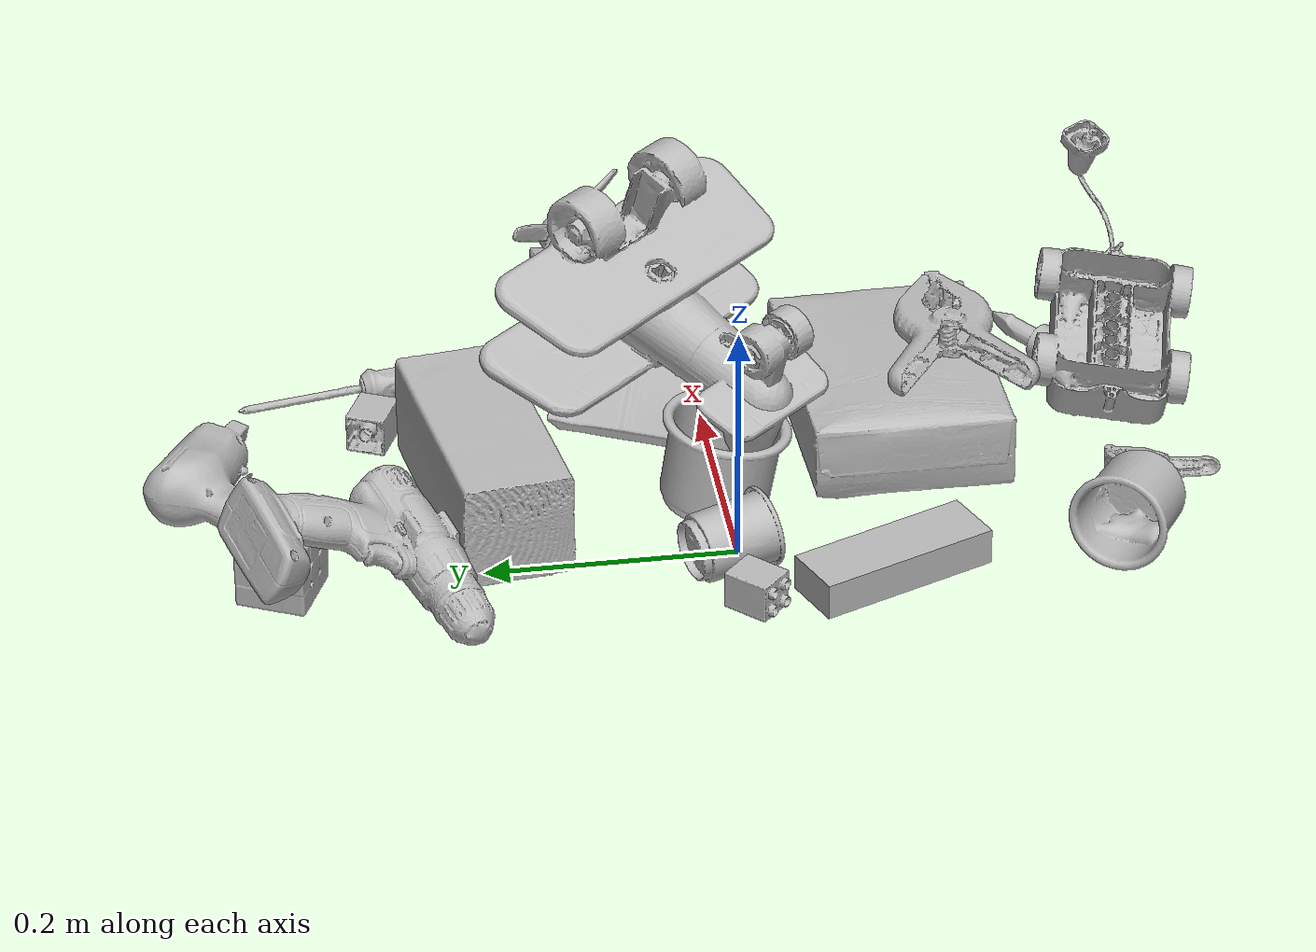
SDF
<sdf version="1.4">
  <world name="default">
    <light name="light1" type="point">
      <pose>0 0 1 0 0 0</pose>
      <diffuse>3 3 3 1</diffuse>
      <specular>3 3 3 1</specular>
    </light>
    <light name="light2" type="point">
      <pose>0 0.5 2 0 0 0</pose>
      <diffuse>1 1 1 1</diffuse>
      <specular>1 1 1 1</specular>
    </light>
    <light name="light3" type="point">
      <pose>0 0.5 2 0 0 0</pose>
      <diffuse>3 3 3 1</diffuse>
      <specular>3 3 3 1</specular>
    </light>
    <scene>
      <ambient>0.7 0.7 0.7</ambient>
    </scene>
    <model name="box21">
      <link name="link_box21">
        <collision name="default">
          <geometry>
            <mesh>
              <uri>model://cracker_box/collision_meshes/collision.obj</uri>
              <scale>1.0 1.0 1.0</scale>
            </mesh>
          </geometry>
          <surface>
            <friction>
              <ode>
                <mu>0.5</mu>
                <mu2>0.5</mu2>
              </ode>
            </friction>
          <contact>
        <ode>
            <max_vel>0</max_vel>
            <min_depth>0.0001</min_depth>
            <kp>1e8</kp>
        </ode>
    </contact></surface>
        </collision>
        <visual name="default">
          <geometry>
            <mesh>
              <uri>model://cracker_box/visual_meshes/visual.dae</uri>
              <scale>1.0 1.0 1.0</scale>
            </mesh>
          </geometry>
        </visual>
        <inertial>
          <mass>2.2869980335235596</mass>
          <pose>0.0009464151225984097 0.0002543425071053207 -0.0017029535956680775 -0.0003162075418873318 -0.011106487737663914 0.0025467956997025456</pose>
          <inertia>
            <ixx>0.005817102</ixx>
            <iyy>0.009605178</iyy>
            <izz>0.013707472</izz>
            <ixy>0</ixy>
            <ixz>0</ixz>
            <iyz>0</iyz>
          </inertia>
        </inertial>
      </link>
      <pose>0.1587095707654953 -0.1485683023929596 0.0355319119989872 3.137147874317939 -0.016549949031238558 -3.120440766538095</pose>
    </model>
    <model name="box22">
      <link name="link_box22">
        <collision name="default">
          <geometry>
            <mesh>
              <uri>model://pudding_box/collision_meshes/collision.obj</uri>
              <scale>1.0 1.0 1.0</scale>
            </mesh>
          </geometry>
          <surface>
            <friction>
              <ode>
                <mu>0.5</mu>
                <mu2>0.5</mu2>
              </ode>
            </friction>
          <contact>
        <ode>
            <max_vel>0</max_vel>
            <min_depth>0.0001</min_depth>
            <kp>1e8</kp>
        </ode>
    </contact></surface>
        </collision>
        <visual name="default">
          <geometry>
            <mesh>
              <uri>model://pudding_box/visual_meshes/visual.dae</uri>
              <scale>1.0 1.0 1.0</scale>
            </mesh>
          </geometry>
        </visual>
        <inertial>
          <mass>0.5370154976844788</mass>
          <pose>0.0004894821904599667 0.0008067885646596551 -0.0005188827635720372 0.005213101796859606 -0.006603800100757192 0.02007981956729938</pose>
          <inertia>
            <ixx>0.0006070684</ixx>
            <iyy>0.00040843996</iyy>
            <izz>0.00089649507</izz>
            <ixy>0</ixy>
            <ixz>0</ixz>
            <iyz>0</iyz>
          </inertia>
        </inertial>
      </link>
      <pose>0.2756819427013397 0.08143375813961029 0.05620679631829262 1.648209436595389 -0.001239612280903734 1.528965960751734</pose>
    </model>
    <model name="box23">
      <link name="link_box23">
        <collision name="default">
          <geometry>
            <mesh>
              <uri>model://jenga/collision_meshes/collision.obj</uri>
              <scale>1.0 1.0 1.0</scale>
            </mesh>
          </geometry>
          <surface>
            <friction>
              <ode>
                <mu>0.5</mu>
                <mu2>0.5</mu2>
              </ode>
            </friction>
          <contact>
        <ode>
            <max_vel>0</max_vel>
            <min_depth>0.0001</min_depth>
            <kp>1e8</kp>
        </ode>
    </contact></surface>
        </collision>
        <visual name="default">
          <geometry>
            <mesh>
              <uri>model://jenga/visual_meshes/visual.dae</uri>
              <scale>1.0 1.0 1.0</scale>
            </mesh>
          </geometry>
        </visual>
        <inertial>
          <mass>0.17325031757354736</mass>
          <pose>-2.502855807051674e-07 -0.0001025000965455547 -4.0923401684267446e-05 0.0 -7.34215461761844e-07 0.0</pose>
          <inertia>
            <ixx>4.7942573e-05</ixx>
            <iyy>0.00032485754</iyy>
            <izz>0.00034681303</izz>
            <ixy>0</ixy>
            <ixz>0</ixz>
            <iyz>0</iyz>
          </inertia>
        </inertial>
      </link>
      <pose>-0.048718955367803574 -0.11445380002260208 0.014999998733401299 9.474591424886297e-09 4.3640719860406936e-09 1.968933180010398</pose>
    </model>
    <model name="cup1">
      <link name="link_cup1">
        <collision name="default">
          <geometry>
            <mesh>
              <uri>model://c_cups/collision_meshes/collision.obj</uri>
              <scale>1.0 1.0 1.0</scale>
            </mesh>
          </geometry>
          <surface>
            <friction>
              <ode>
                <mu>0.5</mu>
                <mu2>0.5</mu2>
              </ode>
            </friction>
          <contact>
        <ode>
            <max_vel>0</max_vel>
            <min_depth>0.0001</min_depth>
            <kp>1e8</kp>
        </ode>
    </contact></surface>
        </collision>
        <visual name="default">
          <geometry>
            <mesh>
              <uri>model://c_cups/visual_meshes/visual.dae</uri>
              <scale>1.0 1.0 1.0</scale>
            </mesh>
          </geometry>
        </visual>
        <inertial>
          <mass>0.033937059342861176</mass>
          <pose>0.0007237257086671889 0.002015391131862998 -0.0012750985333696008 0.3021568203324006 0.0134615240317058 -0.08771816491093205</pose>
          <inertia>
            <ixx>2.5238536e-05</ixx>
            <iyy>2.4792533e-05</iyy>
            <izz>2.2320162e-05</izz>
            <ixy>0</ixy>
            <ixz>0</ixz>
            <iyz>0</iyz>
          </inertia>
        </inertial>
      </link>
      <pose>-0.023508921265602112 0.011274635791778564 0.030124502256512642 -1.4896651145101933 0.35043532838127184 -2.7960984022052076</pose>
    </model>
    <model name="cup2">
      <link name="link_cup2">
        <collision name="default">
          <geometry>
            <mesh>
              <uri>model://f_cups/collision_meshes/collision.obj</uri>
              <scale>1.0 1.0 1.0</scale>
            </mesh>
          </geometry>
          <surface>
            <friction>
              <ode>
                <mu>0.5</mu>
                <mu2>0.5</mu2>
              </ode>
            </friction>
          <contact>
        <ode>
            <max_vel>0</max_vel>
            <min_depth>0.0001</min_depth>
            <kp>1e8</kp>
        </ode>
    </contact></surface>
        </collision>
        <visual name="default">
          <geometry>
            <mesh>
              <uri>model://f_cups/visual_meshes/visual.dae</uri>
              <scale>1.0 1.0 1.0</scale>
            </mesh>
          </geometry>
        </visual>
        <inertial>
          <mass>0.10278050601482391</mass>
          <pose>-0.003171466989442706 -0.0006240068469196558 -0.003655537962913513 0.7862283183637603 -0.2607933822369466 -0.1823733550036739</pose>
          <inertia>
            <ixx>9.661645e-05</ixx>
            <iyy>0.00010135175</iyy>
            <izz>0.000105510015</izz>
            <ixy>0</ixy>
            <ixz>0</ixz>
            <iyz>0</iyz>
          </inertia>
        </inertial>
      </link>
      <pose>-0.0340537428855896 -0.30601072311401367 0.037186186760663986 -0.5493406377900595 -1.4613672723334037 0.0068791715225350065</pose>
    </model>
    <model name="box11">
      <link name="link_box11">
        <collision name="default">
          <geometry>
            <mesh>
              <uri>model://wood_block/collision_meshes/collision.obj</uri>
              <scale>1.0 1.0 1.0</scale>
            </mesh>
          </geometry>
          <surface>
            <friction>
              <ode>
                <mu>0.5</mu>
                <mu2>0.5</mu2>
              </ode>
            </friction>
          <contact>
        <ode>
            <max_vel>0</max_vel>
            <min_depth>0.0001</min_depth>
            <kp>1e8</kp>
        </ode>
    </contact></surface>
        </collision>
        <visual name="default">
          <geometry>
            <mesh>
              <uri>model://wood_block/visual_meshes/visual.dae</uri>
              <scale>1.0 1.0 1.0</scale>
            </mesh>
          </geometry>
        </visual>
        <inertial>
          <mass>2.321592330932617</mass>
          <pose>-5.813315056002466e-06 -0.000570809468626976 0.0002640858292579651 -0.052209755297172346 -0.005192694580027673 -0.006861376555374886</pose>
          <inertia>
            <ixx>0.0031066423</ixx>
            <iyy>0.009813884</iyy>
            <izz>0.009777175</izz>
            <ixy>0</ixy>
            <ixz>0</ixz>
            <iyz>0</iyz>
          </inertia>
        </inertial>
      </link>
      <pose>0.0855446606874466 0.1887548416852951 0.045702241361141205 1.5680076544596875 -0.006950542855228677 -2.9854637233156605</pose>
    </model>
    <model name="box12">
      <link name="link_box12">
        <collision name="default">
          <geometry>
            <mesh>
              <uri>model://gelatin_box/collision_meshes/collision.obj</uri>
              <scale>1.0 1.0 1.0</scale>
            </mesh>
          </geometry>
          <surface>
            <friction>
              <ode>
                <mu>0.5</mu>
                <mu2>0.5</mu2>
              </ode>
            </friction>
          <contact>
        <ode>
            <max_vel>0</max_vel>
            <min_depth>0.0001</min_depth>
            <kp>1e8</kp>
        </ode>
    </contact></surface>
        </collision>
        <visual name="default">
          <geometry>
            <mesh>
              <uri>model://gelatin_box/visual_meshes/visual.dae</uri>
              <scale>1.0 1.0 1.0</scale>
            </mesh>
          </geometry>
        </visual>
        <inertial>
          <mass>0.2263340801000595</mass>
          <pose>0.0004319618456065655 0.00011156871914863586 -0.00036403207923285663 -0.001050371981036731 -0.004755818689382226 0.016440561334450605</pose>
          <inertia>
            <ixx>0.00015977336</ixx>
            <iyy>0.00011412529</iyy>
            <izz>0.00024321067</izz>
            <ixy>0</ixy>
            <ixz>0</ixz>
            <iyz>0</iyz>
          </inertia>
        </inertial>
      </link>
      <pose>0.2884705662727356 -0.35496076941490173 0.01565667986869812 -3.078134904217747 -1.6927678197863177e-05 -1.5548164965625195</pose>
    </model>
    <model name="box13">
      <link name="link_box13">
        <collision name="default">
          <geometry>
            <mesh>
              <uri>model://sugar_box/collision_meshes/collision.obj</uri>
              <scale>1.0 1.0 1.0</scale>
            </mesh>
          </geometry>
          <surface>
            <friction>
              <ode>
                <mu>0.5</mu>
                <mu2>0.5</mu2>
              </ode>
            </friction>
          <contact>
        <ode>
            <max_vel>0</max_vel>
            <min_depth>0.0001</min_depth>
            <kp>1e8</kp>
        </ode>
    </contact></surface>
        </collision>
        <visual name="default">
          <geometry>
            <mesh>
              <uri>model://sugar_box/visual_meshes/visual.dae</uri>
              <scale>1.0 1.0 1.0</scale>
            </mesh>
          </geometry>
        </visual>
        <inertial>
          <mass>0.4976349174976349</mass>
          <pose>0.0010343727190047503 3.849109634757042e-05 -0.00036364805418998003 -0.0004046263004245651 0.001050663405794887 0.002615379021776999</pose>
          <inertia>
            <ixx>0.0004146281</ixx>
            <iyy>0.0013401629</iyy>
            <izz>0.0016043353</izz>
            <ixy>0</ixy>
            <ixz>0</ixz>
            <iyz>0</iyz>
          </inertia>
        </inertial>
      </link>
      <pose>0.17433686554431915 0.030934598296880722 0.045437559485435486 -2.316813377693801 -0.0034541931997226173 -2.0149602273521743</pose>
    </model>
    <model name="box14">
      <link name="link_box14">
        <collision name="default">
          <geometry>
            <mesh>
              <uri>model://rubiks_cube/collision_meshes/collision.obj</uri>
              <scale>1.0 1.0 1.0</scale>
            </mesh>
          </geometry>
          <surface>
            <friction>
              <ode>
                <mu>0.5</mu>
                <mu2>0.5</mu2>
              </ode>
            </friction>
          <contact>
        <ode>
            <max_vel>0</max_vel>
            <min_depth>0.0001</min_depth>
            <kp>1e8</kp>
        </ode>
    </contact></surface>
        </collision>
        <visual name="default">
          <geometry>
            <mesh>
              <uri>model://rubiks_cube/visual_meshes/visual.dae</uri>
              <scale>1.0 1.0 1.0</scale>
            </mesh>
          </geometry>
        </visual>
        <inertial>
          <mass>0.2531126141548157</mass>
          <pose>2.6721041649580002e-05 5.2569666877388954e-05 -7.264316536748083e-06 -0.05467274129792389 -0.0981396008906979 -0.0344563195746163</pose>
          <inertia>
            <ixx>0.00013986173</ixx>
            <iyy>0.00013920949</iyy>
            <izz>0.00014102072</izz>
            <ixy>0</ixy>
            <ixz>0</ixz>
            <iyz>0</iyz>
          </inertia>
        </inertial>
      </link>
      <pose>-0.0026388554833829403 0.3580007553100586 0.029261508956551552 1.2522774395207945 1.5374034090753588 0.8005472896095204</pose>
    </model>
    <model name="cup15">
      <link name="link_cup15">
        <collision name="default">
          <geometry>
            <mesh>
              <uri>model://j_cups/collision_meshes/collision.obj</uri>
              <scale>1.0 1.0 1.0</scale>
            </mesh>
          </geometry>
          <surface>
            <friction>
              <ode>
                <mu>0.5</mu>
                <mu2>0.5</mu2>
              </ode>
            </friction>
          <contact>
        <ode>
            <max_vel>0</max_vel>
            <min_depth>0.0001</min_depth>
            <kp>1e8</kp>
        </ode>
    </contact></surface>
        </collision>
        <visual name="default">
          <geometry>
            <mesh>
              <uri>model://j_cups/visual_meshes/visual.dae</uri>
              <scale>1.0 1.0 1.0</scale>
            </mesh>
          </geometry>
        </visual>
        <inertial>
          <mass>0.12765173614025116</mass>
          <pose>0.0006164864171296358 0.0005398980574682355 -0.0013479006011039019 0.030303852295551513 0.03757989298695449 0.4386938541947324</pose>
          <inertia>
            <ixx>0.00018743309</ixx>
            <iyy>0.00018938213</iyy>
            <izz>0.0002160715</izz>
            <ixy>0</ixy>
            <ixz>0</ixz>
            <iyz>0</iyz>
          </inertia>
        </inertial>
      </link>
      <pose>0.06444373726844788 0.0044190245680511 0.043899912387132645 -0.15580483747511606 -0.057360899000203726 2.8623776458809687</pose>
    </model>
    <model name="toy1">
      <link name="link_toy1">
        <collision name="default">
          <geometry>
            <mesh>
              <uri>model://f_lego_duplo/collision_meshes/collision.obj</uri>
              <scale>1.0 1.0 1.0</scale>
            </mesh>
          </geometry>
          <surface>
            <friction>
              <ode>
                <mu>0.5</mu>
                <mu2>0.5</mu2>
              </ode>
            </friction>
          <contact>
        <ode>
            <max_vel>0</max_vel>
            <min_depth>0.0001</min_depth>
            <kp>1e8</kp>
        </ode>
    </contact></surface>
        </collision>
        <visual name="default">
          <geometry>
            <mesh>
              <uri>model://f_lego_duplo/visual_meshes/visual.dae</uri>
              <scale>1.0 1.0 1.0</scale>
            </mesh>
          </geometry>
        </visual>
        <inertial>
          <mass>0.04013235494494438</mass>
          <pose>2.369376306887716e-05 0.00013393163681030273 0.0018837876850739121 0.029838734112773806 -0.014424842824784668 -0.6756708500035773</pose>
          <inertia>
            <ixx>8.480189e-06</ixx>
            <iyy>8.555736e-06</iyy>
            <izz>7.361164e-06</izz>
            <ixy>0</ixy>
            <ixz>0</ixz>
            <iyz>0</iyz>
          </inertia>
        </inertial>
      </link>
      <pose>0.20303994417190552 0.26459112763404846 0.016207218170166016 1.5789919918918969 0.00014488540680092767 1.1467246139430725</pose>
    </model>
    <model name="toy2">
      <link name="link_toy2">
        <collision name="default">
          <geometry>
            <mesh>
              <uri>model://e_toy_airplane/collision_meshes/collision.obj</uri>
              <scale>1.0 1.0 1.0</scale>
            </mesh>
          </geometry>
          <surface>
            <friction>
              <ode>
                <mu>0.5</mu>
                <mu2>0.5</mu2>
              </ode>
            </friction>
          <contact>
        <ode>
            <max_vel>0</max_vel>
            <min_depth>0.0001</min_depth>
            <kp>1e8</kp>
        </ode>
    </contact></surface>
        </collision>
        <visual name="default">
          <geometry>
            <mesh>
              <uri>model://e_toy_airplane/visual_meshes/visual.dae</uri>
              <scale>1.0 1.0 1.0</scale>
            </mesh>
          </geometry>
        </visual>
        <inertial>
          <mass>0.030105752870440483</mass>
          <pose>0.00011740480840671808 -2.248285454697907e-05 -0.011187204159796238 0.0055184715057391125 0.009228317867647443 0.150413097465581</pose>
          <inertia>
            <ixx>9.18862e-06</ixx>
            <iyy>9.094625e-06</iyy>
            <izz>2.761542e-06</izz>
            <ixy>0</ixy>
            <ixz>0</ixz>
            <iyz>0</iyz>
          </inertia>
        </inertial>
      </link>
      <pose>0.255879670381546 -0.27732324600219727 0.018169580027461052 1.458953689045237 0.3846252583575041 2.225663756150124</pose>
    </model>
    <model name="toy3">
      <link name="link_toy3">
        <collision name="default">
          <geometry>
            <mesh>
              <uri>model://g_lego_duplo/collision_meshes/collision.obj</uri>
              <scale>1.0 1.0 1.0</scale>
            </mesh>
          </geometry>
          <surface>
            <friction>
              <ode>
                <mu>0.5</mu>
                <mu2>0.5</mu2>
              </ode>
            </friction>
          <contact>
        <ode>
            <max_vel>0</max_vel>
            <min_depth>0.0001</min_depth>
            <kp>1e8</kp>
        </ode>
    </contact></surface>
        </collision>
        <visual name="default">
          <geometry>
            <mesh>
              <uri>model://g_lego_duplo/visual_meshes/visual.dae</uri>
              <scale>1.0 1.0 1.0</scale>
            </mesh>
          </geometry>
        </visual>
        <inertial>
          <mass>0.4529305100440979</mass>
          <pose>-0.050047703087329865 0.0017554633086547256 0.0038806775119155645 0.010963008114131517 0.03810824387856379 -0.09653032518797504</pose>
          <inertia>
            <ixx>0.00065630145</ixx>
            <iyy>0.0019842102</iyy>
            <izz>0.0024823209</izz>
            <ixy>0</ixy>
            <ixz>0</ixz>
            <iyz>0</iyz>
          </inertia>
        </inertial>
      </link>
      <pose>0.26285141706466675 -0.34711968898773193 0.0602426752448082 -3.0082933582707967 -0.24955507835881413 -0.22055635206390548</pose>
    </model>
    <model name="toy4">
      <link name="link_toy4">
        <collision name="default">
          <geometry>
            <mesh>
              <uri>model://b_lego_duplo/collision_meshes/collision.obj</uri>
              <scale>1.0 1.0 1.0</scale>
            </mesh>
          </geometry>
          <surface>
            <friction>
              <ode>
                <mu>0.5</mu>
                <mu2>0.5</mu2>
              </ode>
            </friction>
          <contact>
        <ode>
            <max_vel>0</max_vel>
            <min_depth>0.0001</min_depth>
            <kp>1e8</kp>
        </ode>
    </contact></surface>
        </collision>
        <visual name="default">
          <geometry>
            <mesh>
              <uri>model://b_lego_duplo/visual_meshes/visual.dae</uri>
              <scale>1.0 1.0 1.0</scale>
            </mesh>
          </geometry>
        </visual>
        <inertial>
          <mass>0.018499748781323433</mass>
          <pose>-0.00011053003981942311 -9.15247255761642e-06 0.001929429592564702 -0.037494549291744686 -0.026354734626349716 0.4518828938821803</pose>
          <inertia>
            <ixx>3.786112e-06</ixx>
            <iyy>3.8115643e-06</iyy>
            <izz>3.3733036e-06</izz>
            <ixy>0</ixy>
            <ixz>0</ixz>
            <iyz>0</iyz>
          </inertia>
        </inertial>
      </link>
      <pose>-0.07599878311157227 -0.004184230696409941 0.01621692255139351 -1.5803154897879534 0.0002458172463599186 2.3785015054934666</pose>
    </model>
    <model name="toy5">
      <link name="link_toy5">
        <collision name="default">
          <geometry>
            <mesh>
              <uri>model://b_toy_airplane/collision_meshes/collision.obj</uri>
              <scale>1.0 1.0 1.0</scale>
            </mesh>
          </geometry>
          <surface>
            <friction>
              <ode>
                <mu>0.5</mu>
                <mu2>0.5</mu2>
              </ode>
            </friction>
          <contact>
        <ode>
            <max_vel>0</max_vel>
            <min_depth>0.0001</min_depth>
            <kp>1e8</kp>
        </ode>
    </contact></surface>
        </collision>
        <visual name="default">
          <geometry>
            <mesh>
              <uri>model://b_toy_airplane/visual_meshes/visual.dae</uri>
              <scale>1.0 1.0 1.0</scale>
            </mesh>
          </geometry>
        </visual>
        <inertial>
          <mass>0.38904744386672974</mass>
          <pose>0.00508136348798871 0.004015582147985697 0.00954306498169899 -0.040018071915393034 -0.04022181905785318 -0.5601502897874057</pose>
          <inertia>
            <ixx>0.00072227366</ixx>
            <iyy>0.0002886998</iyy>
            <izz>0.0008985803</izz>
            <ixy>0</ixy>
            <ixz>0</ixz>
            <iyz>0</iyz>
          </inertia>
        </inertial>
      </link>
      <pose>0.10378523170948029 0.39748942852020264 0.01697787083685398 0.18487655283543283 0.11349925195321893 -0.5149115822307111</pose>
    </model>
    <model name="toy6">
      <link name="link_toy6">
        <collision name="default">
          <geometry>
            <mesh>
              <uri>model://a_toy_airplane/collision_meshes/collision.obj</uri>
              <scale>1.0 1.0 1.0</scale>
            </mesh>
          </geometry>
          <surface>
            <friction>
              <ode>
                <mu>0.5</mu>
                <mu2>0.5</mu2>
              </ode>
            </friction>
          <contact>
        <ode>
            <max_vel>0</max_vel>
            <min_depth>0.0001</min_depth>
            <kp>1e8</kp>
        </ode>
    </contact></surface>
        </collision>
        <visual name="default">
          <geometry>
            <mesh>
              <uri>model://a_toy_airplane/visual_meshes/visual.dae</uri>
              <scale>1.0 1.0 1.0</scale>
            </mesh>
          </geometry>
        </visual>
        <inertial>
          <mass>2.344027519226074</mass>
          <pose>0.025165099650621414 -0.003707322059199214 -0.0011962436838075519 -0.012016950381748406 -0.14663507119063698 0.004149124939747771</pose>
          <inertia>
            <ixx>0.008512287</ixx>
            <iyy>0.012404123</iyy>
            <izz>0.014523712</izz>
            <ixy>0</ixy>
            <ixz>0</ixz>
            <iyz>0</iyz>
          </inertia>
        </inertial>
      </link>
      <pose>0.14398783445358276 0.030116692185401917 0.13250458240509033 3.076036782665189 -0.47267832194019266 0.7060338956659675</pose>
    </model>
    <model name="hardware1">
      <link name="link_hardware1">
        <collision name="default">
          <geometry>
            <mesh>
              <uri>model://power_drill/collision_meshes/collision.obj</uri>
              <scale>1.0 1.0 1.0</scale>
            </mesh>
          </geometry>
          <surface>
            <friction>
              <ode>
                <mu>0.5</mu>
                <mu2>0.5</mu2>
              </ode>
            </friction>
          <contact>
        <ode>
            <max_vel>0</max_vel>
            <min_depth>0.0001</min_depth>
            <kp>1e8</kp>
        </ode>
    </contact></surface>
        </collision>
        <visual name="default">
          <geometry>
            <mesh>
              <uri>model://power_drill/visual_meshes/visual.dae</uri>
              <scale>1.0 1.0 1.0</scale>
            </mesh>
          </geometry>
        </visual>
        <inertial>
          <mass>0.3504050374031067</mass>
          <pose>-0.014780547469854355 0.014369429089128971 0.0012414171360433102 0.0046091621872236125 0.004073022304059966 -0.18362696816981472</pose>
          <inertia>
            <ixx>0.001427917</ixx>
            <iyy>0.0005618108</iyy>
            <izz>0.0018858167</izz>
            <ixy>0</ixy>
            <ixz>0</ixz>
            <iyz>0</iyz>
          </inertia>
        </inertial>
      </link>
      <pose>-0.05041337385773659 0.3032059073448181 0.05995345860719681 -0.3873479750364606 0.21770307611868592 -2.803029535751614</pose>
    </model>
    <model name="hardware2">
      <link name="link_hardware2">
        <collision name="default">
          <geometry>
            <mesh>
              <uri>model://phillips_screwdriver/collision_meshes/collision.obj</uri>
              <scale>1.0 1.0 1.0</scale>
            </mesh>
          </geometry>
          <surface>
            <friction>
              <ode>
                <mu>0.5</mu>
                <mu2>0.5</mu2>
              </ode>
            </friction>
          <contact>
        <ode>
            <max_vel>0</max_vel>
            <min_depth>0.0001</min_depth>
            <kp>1e8</kp>
        </ode>
    </contact></surface>
        </collision>
        <visual name="default">
          <geometry>
            <mesh>
              <uri>model://phillips_screwdriver/visual_meshes/visual.dae</uri>
              <scale>1.0 1.0 1.0</scale>
            </mesh>
          </geometry>
        </visual>
        <inertial>
          <mass>0.06613585352897644</mass>
          <pose>-0.04777182638645172 0.0010362302418798208 -0.000455554953077808 -0.157256923583716 0.005850995849984215 -0.0021567369270283215</pose>
          <inertia>
            <ixx>7.770284e-06</ixx>
            <iyy>9.742579e-05</iyy>
            <izz>9.7508564e-05</izz>
            <ixy>0</ixy>
            <ixz>0</ixz>
            <iyz>0</iyz>
          </inertia>
        </inertial>
      </link>
      <pose>0.25812894105911255 0.2589324712753296 0.013779960572719574 2.987840933493426 0.046194550060323004 1.6871366909637882</pose>
    </model>
    <model name="hardware3">
      <link name="link_hardware3">
        <collision name="default">
          <geometry>
            <mesh>
              <uri>model://large_clamp/collision_meshes/collision.obj</uri>
              <scale>1.0 1.0 1.0</scale>
            </mesh>
          </geometry>
          <surface>
            <friction>
              <ode>
                <mu>0.5</mu>
                <mu2>0.5</mu2>
              </ode>
            </friction>
          <contact>
        <ode>
            <max_vel>0</max_vel>
            <min_depth>0.0001</min_depth>
            <kp>1e8</kp>
        </ode>
    </contact></surface>
        </collision>
        <visual name="default">
          <geometry>
            <mesh>
              <uri>model://large_clamp/visual_meshes/visual.dae</uri>
              <scale>1.0 1.0 1.0</scale>
            </mesh>
          </geometry>
        </visual>
        <inertial>
          <mass>0.0812491774559021</mass>
          <pose>0.00636935792863369 0.00035856812610290945 -0.0001839803153416142 -0.0021330695247891995 0.009671592144941876 0.026633191629386817</pose>
          <inertia>
            <ixx>7.1684015e-05</ixx>
            <iyy>0.00013613176</iyy>
            <izz>0.00019693196</izz>
            <ixy>0</ixy>
            <ixz>0</ixz>
            <iyz>0</iyz>
          </inertia>
        </inertial>
      </link>
      <pose>0.15193741023540497 -0.193174347281456 0.08968942612409592 -3.104633499009522 0.059849181600803394 0.01359572799735569</pose>
    </model>
    <model name="hardware4">
      <link name="link_hardware4">
        <collision name="default">
          <geometry>
            <mesh>
              <uri>model://medium_clamp/collision_meshes/collision.obj</uri>
              <scale>1.0 1.0 1.0</scale>
            </mesh>
          </geometry>
          <surface>
            <friction>
              <ode>
                <mu>0.5</mu>
                <mu2>0.5</mu2>
              </ode>
            </friction>
          <contact>
        <ode>
            <max_vel>0</max_vel>
            <min_depth>0.0001</min_depth>
            <kp>1e8</kp>
        </ode>
    </contact></surface>
        </collision>
        <visual name="default">
          <geometry>
            <mesh>
              <uri>model://medium_clamp/visual_meshes/visual.dae</uri>
              <scale>1.0 1.0 1.0</scale>
            </mesh>
          </geometry>
        </visual>
        <inertial>
          <mass>0.04165364429354668</mass>
          <pose>0.0053909956477582455 0.00039532381924800575 -0.0001222159044118598 -0.0012269202016338824 0.0025845009837354585 0.038207769727488725</pose>
          <inertia>
            <ixx>1.134795e-05</ixx>
            <iyy>1.6514476e-05</iyy>
            <izz>2.5437248e-05</izz>
            <ixy>0</ixy>
            <ixz>0</ixz>
            <iyz>0</iyz>
          </inertia>
        </inertial>
      </link>
      <pose>0.046539317816495895 -0.3415735065937042 0.013314678333699703 -3.019532526999588 0.07746685214558219 0.8287529606022153</pose>
    </model>
  <physics type="ode">
      <max_contacts>50</max_contacts>
      <ode>
        <solver>
          <type>quick</type>
          <iters>75</iters>
        </solver>
        <constraints>
          <contact_max_correcting_vel>0</contact_max_correcting_vel>
          <contact_surface_layer>0</contact_surface_layer>
        </constraints>
      </ode>
    </physics></world>
</sdf>
